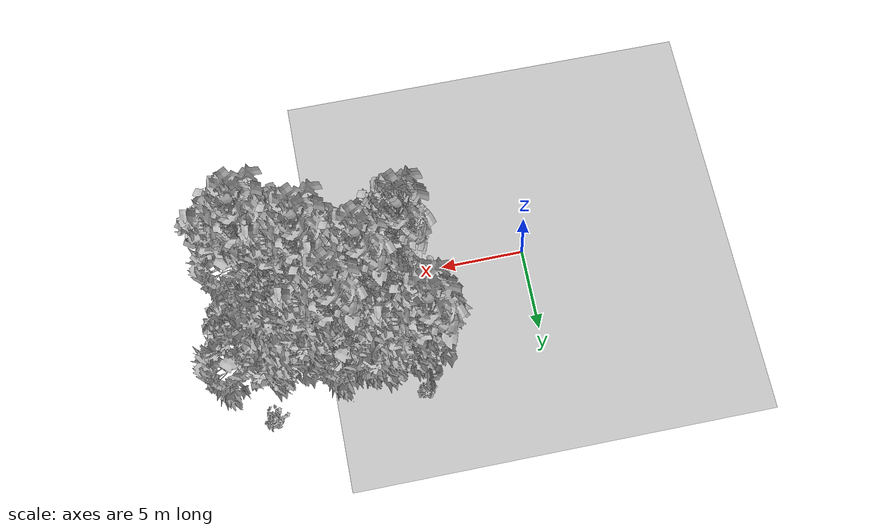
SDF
<sdf version="1.7">
 <world name="default">
  <model name="ground_plane">
   <static>1</static>
   <link name="link">
    <collision name="collision">
     <pose>-50 0 0 0 -0 0</pose>
     <geometry><plane><normal>0 0 1</normal><size>80 80</size></plane></geometry>
     <surface><contact><ode><min_depth>0.01</min_depth><max_vel>0</max_vel></ode></contact></surface>
    </collision>
    <visual name="grass">
     <cast_shadows>0</cast_shadows>
     <geometry>
      <mesh>
       <scale>0.46714285714285714 0.46714285714285714 0.1</scale>
       <uri>file://grass_plane/meshes/grass_plane.dae</uri>
      </mesh>
     </geometry>
    </visual>
   </link>
  </model>
  <model name="Tree 34">
   <static>1</static>
   <pose>15.75394999544745 0.29198959973918903 0 1.57079 -0 0</pose>
   <link name="link">
    <collision name="collision">
     <geometry><mesh><scale>3.5 5 3.5</scale><uri>model://tree_9/meshes/tree_9.obj</uri></mesh></geometry>
    </collision>
    <visual name="visual">
     <geometry><mesh><scale>3.5 5 3.5</scale><uri>model://tree_9/meshes/tree_9.obj</uri></mesh></geometry>
    </visual>
   </link>
  </model>
  <model name="Tree 51">
   <static>1</static>
   <pose>13.115661060410844 3.373158618874058 0 1.57079 -0 0</pose>
   <link name="link">
    <collision name="collision">
     <geometry><mesh><scale>3.5 5 3.5</scale><uri>model://tree_2/meshes/tree_2.obj</uri></mesh></geometry>
    </collision>
    <visual name="visual">
     <geometry><mesh><scale>3.5 5 3.5</scale><uri>model://tree_2/meshes/tree_2.obj</uri></mesh></geometry>
    </visual>
   </link>
  </model>
  <model name="Tree 62">
   <static>1</static>
   <pose>11.694431519298185 5.433279947996887 0 1.57079 -0 0</pose>
   <link name="link">
    <collision name="collision">
     <geometry><mesh><scale>3.5 5 3.5</scale><uri>model://tree_9/meshes/tree_9.obj</uri></mesh></geometry>
    </collision>
    <visual name="visual">
     <geometry><mesh><scale>3.5 5 3.5</scale><uri>model://tree_9/meshes/tree_9.obj</uri></mesh></geometry>
    </visual>
   </link>
  </model>
  <model name="Tree 79">
   <static>1</static>
   <pose>10.336337650634704 2.343339848161051 0 1.57079 -0 0</pose>
   <link name="link">
    <collision name="collision">
     <geometry><mesh><scale>3.5 5 3.5</scale><uri>model://tree_2/meshes/tree_2.obj</uri></mesh></geometry>
    </collision>
    <visual name="visual">
     <geometry><mesh><scale>3.5 5 3.5</scale><uri>model://tree_2/meshes/tree_2.obj</uri></mesh></geometry>
    </visual>
   </link>
  </model>
  <model name="Tree 99">
   <static>1</static>
   <pose>13.416703653999079 4.802766635892162 0 1.57079 -0 0</pose>
   <link name="link">
    <collision name="collision">
     <geometry><mesh><scale>3.5 5 3.5</scale><uri>model://tree_2/meshes/tree_2.obj</uri></mesh></geometry>
    </collision>
    <visual name="visual">
     <geometry><mesh><scale>3.5 5 3.5</scale><uri>model://tree_2/meshes/tree_2.obj</uri></mesh></geometry>
    </visual>
   </link>
  </model>
  <model name="Tree 126">
   <static>1</static>
   <pose>8.190412451663576 6.014021272746753 0 1.57079 -0 0</pose>
   <link name="link">
    <collision name="collision">
     <geometry><mesh><scale>3.5 5 3.5</scale><uri>model://tree_2/meshes/tree_2.obj</uri></mesh></geometry>
    </collision>
    <visual name="visual">
     <geometry><mesh><scale>3.5 5 3.5</scale><uri>model://tree_2/meshes/tree_2.obj</uri></mesh></geometry>
    </visual>
   </link>
  </model>
  <model name="Tree 223">
   <static>1</static>
   <pose>15.300945860618725 -0.02943285491555514 0 1.57079 -0 0</pose>
   <link name="link">
    <collision name="collision">
     <geometry><mesh><scale>3.5 5 3.5</scale><uri>model://tree_2/meshes/tree_2.obj</uri></mesh></geometry>
    </collision>
    <visual name="visual">
     <geometry><mesh><scale>3.5 5 3.5</scale><uri>model://tree_2/meshes/tree_2.obj</uri></mesh></geometry>
    </visual>
   </link>
  </model>
  <model name="Tree 276">
   <static>1</static>
   <pose>7.031673003716492 7.374940477290579 0 1.57079 -0 0</pose>
   <link name="link">
    <collision name="collision">
     <geometry><mesh><scale>3.5 5 3.5</scale><uri>model://tree_9/meshes/tree_9.obj</uri></mesh></geometry>
    </collision>
    <visual name="visual">
     <geometry><mesh><scale>3.5 5 3.5</scale><uri>model://tree_9/meshes/tree_9.obj</uri></mesh></geometry>
    </visual>
   </link>
  </model>
  <model name="Tree 306">
   <static>1</static>
   <pose>13.08520487826975 1.1579900831947114 0 1.57079 -0 0</pose>
   <link name="link">
    <collision name="collision">
     <geometry><mesh><scale>3.5 5 3.5</scale><uri>model://tree_2/meshes/tree_2.obj</uri></mesh></geometry>
    </collision>
    <visual name="visual">
     <geometry><mesh><scale>3.5 5 3.5</scale><uri>model://tree_2/meshes/tree_2.obj</uri></mesh></geometry>
    </visual>
   </link>
  </model>
  <model name="Tree 323">
   <static>1</static>
   <pose>9.82986223678008 6.335077286413096 0 1.57079 -0 0</pose>
   <link name="link">
    <collision name="collision">
     <geometry><mesh><scale>3.5 5 3.5</scale><uri>model://tree_2/meshes/tree_2.obj</uri></mesh></geometry>
    </collision>
    <visual name="visual">
     <geometry><mesh><scale>3.5 5 3.5</scale><uri>model://tree_2/meshes/tree_2.obj</uri></mesh></geometry>
    </visual>
   </link>
  </model>
  <model name="Tree 372">
   <static>1</static>
   <pose>9.904639075924813 3.309628266221921 0 1.57079 -0 0</pose>
   <link name="link">
    <collision name="collision">
     <geometry><mesh><scale>3.5 5 3.5</scale><uri>model://tree_9/meshes/tree_9.obj</uri></mesh></geometry>
    </collision>
    <visual name="visual">
     <geometry><mesh><scale>3.5 5 3.5</scale><uri>model://tree_9/meshes/tree_9.obj</uri></mesh></geometry>
    </visual>
   </link>
  </model>
  <model name="Tree 415">
   <static>1</static>
   <pose>12.819333493328102 1.7587279541549208 0 1.57079 -0 0</pose>
   <link name="link">
    <collision name="collision">
     <geometry><mesh><scale>3.5 5 3.5</scale><uri>model://tree_9/meshes/tree_9.obj</uri></mesh></geometry>
    </collision>
    <visual name="visual">
     <geometry><mesh><scale>3.5 5 3.5</scale><uri>model://tree_9/meshes/tree_9.obj</uri></mesh></geometry>
    </visual>
   </link>
  </model>
  <model name="Tree 541">
   <static>1</static>
   <pose>12.180242072260299 2.3773031305296968 0 1.57079 -0 0</pose>
   <link name="link">
    <collision name="collision">
     <geometry><mesh><scale>3.5 5 3.5</scale><uri>model://tree_2/meshes/tree_2.obj</uri></mesh></geometry>
    </collision>
    <visual name="visual">
     <geometry><mesh><scale>3.5 5 3.5</scale><uri>model://tree_2/meshes/tree_2.obj</uri></mesh></geometry>
    </visual>
   </link>
  </model>
  <model name="Tree 543">
   <static>1</static>
   <pose>7.642827110396183 2.2116961837476268 0 1.57079 -0 0</pose>
   <link name="link">
    <collision name="collision">
     <geometry><mesh><scale>3.5 5 3.5</scale><uri>model://tree_9/meshes/tree_9.obj</uri></mesh></geometry>
    </collision>
    <visual name="visual">
     <geometry><mesh><scale>3.5 5 3.5</scale><uri>model://tree_9/meshes/tree_9.obj</uri></mesh></geometry>
    </visual>
   </link>
  </model>
  <model name="Tree 556">
   <static>1</static>
   <pose>15.73344226496581 5.647564741896396 0 1.57079 -0 0</pose>
   <link name="link">
    <collision name="collision">
     <geometry><mesh><scale>3.5 5 3.5</scale><uri>model://tree_2/meshes/tree_2.obj</uri></mesh></geometry>
    </collision>
    <visual name="visual">
     <geometry><mesh><scale>3.5 5 3.5</scale><uri>model://tree_2/meshes/tree_2.obj</uri></mesh></geometry>
    </visual>
   </link>
  </model>
  <model name="Tree 595">
   <static>1</static>
   <pose>8.398914998039658 5.517555568965292 0 1.57079 -0 0</pose>
   <link name="link">
    <collision name="collision">
     <geometry><mesh><scale>3.5 5 3.5</scale><uri>model://tree_2/meshes/tree_2.obj</uri></mesh></geometry>
    </collision>
    <visual name="visual">
     <geometry><mesh><scale>3.5 5 3.5</scale><uri>model://tree_2/meshes/tree_2.obj</uri></mesh></geometry>
    </visual>
   </link>
  </model>
  <model name="Tree 624">
   <static>1</static>
   <pose>7.7269006050239 2.0306865690781564 0 1.57079 -0 0</pose>
   <link name="link">
    <collision name="collision">
     <geometry><mesh><scale>3.5 5 3.5</scale><uri>model://tree_9/meshes/tree_9.obj</uri></mesh></geometry>
    </collision>
    <visual name="visual">
     <geometry><mesh><scale>3.5 5 3.5</scale><uri>model://tree_9/meshes/tree_9.obj</uri></mesh></geometry>
    </visual>
   </link>
  </model>
  <model name="Bush 84">
   <static>1</static>
   <pose>10.446279090381857 1.3286601807235456 0 1.57079 -0 0</pose>
   <link name="link">
    <collision name="collision">
     <geometry><mesh><scale>2 2 2</scale><uri>model://bush_2/meshes/bush_2.obj</uri></mesh></geometry>
     <surface><contact><collide_without_contact>false</collide_without_contact></contact></surface>
    </collision>
    <visual name="visual">
     <geometry><mesh><scale>2 2 2</scale><uri>model://bush_2/meshes/bush_2.obj</uri></mesh></geometry>
    </visual>
   </link>
  </model>
  <model name="Bush 148">
   <static>1</static>
   <pose>16.30936869877185 7.541737399946442 0 1.57079 -0 0</pose>
   <link name="link">
    <collision name="collision">
     <geometry><mesh><scale>2 2 2</scale><uri>model://bush_2/meshes/bush_2.obj</uri></mesh></geometry>
     <surface><contact><collide_without_contact>false</collide_without_contact></contact></surface>
    </collision>
    <visual name="visual">
     <geometry><mesh><scale>2 2 2</scale><uri>model://bush_2/meshes/bush_2.obj</uri></mesh></geometry>
    </visual>
   </link>
  </model>
  <model name="Bush 199">
   <static>1</static>
   <pose>12.92383588346732 2.3684104642360566 0 1.57079 -0 0</pose>
   <link name="link">
    <collision name="collision">
     <geometry><mesh><scale>2 2 2</scale><uri>model://bush_2/meshes/bush_2.obj</uri></mesh></geometry>
     <surface><contact><collide_without_contact>false</collide_without_contact></contact></surface>
    </collision>
    <visual name="visual">
     <geometry><mesh><scale>2 2 2</scale><uri>model://bush_2/meshes/bush_2.obj</uri></mesh></geometry>
    </visual>
   </link>
  </model>
  <model name="Bush 518">
   <static>1</static>
   <pose>5.462350723894659 0.3163940545321111 0 1.57079 -0 0</pose>
   <link name="link">
    <collision name="collision">
     <geometry><mesh><scale>2 2 2</scale><uri>model://bush_0/meshes/bush_0.obj</uri></mesh></geometry>
     <surface><contact><collide_without_contact>false</collide_without_contact></contact></surface>
    </collision>
    <visual name="visual">
     <geometry><mesh><scale>2 2 2</scale><uri>model://bush_0/meshes/bush_0.obj</uri></mesh></geometry>
    </visual>
   </link>
  </model>
  <model name="Bush 522">
   <static>1</static>
   <pose>16.153963536704488 7.367019809971673 0 1.57079 -0 0</pose>
   <link name="link">
    <collision name="collision">
     <geometry><mesh><scale>2 2 2</scale><uri>model://bush_4/meshes/bush_4.obj</uri></mesh></geometry>
     <surface><contact><collide_without_contact>false</collide_without_contact></contact></surface>
    </collision>
    <visual name="visual">
     <geometry><mesh><scale>2 2 2</scale><uri>model://bush_4/meshes/bush_4.obj</uri></mesh></geometry>
    </visual>
   </link>
  </model>
  <model name="Bush 591">
   <static>1</static>
   <pose>13.328196401215394 4.368124349966436 0 1.57079 -0 0</pose>
   <link name="link">
    <collision name="collision">
     <geometry><mesh><scale>2 2 2</scale><uri>model://bush_2/meshes/bush_2.obj</uri></mesh></geometry>
     <surface><contact><collide_without_contact>false</collide_without_contact></contact></surface>
    </collision>
    <visual name="visual">
     <geometry><mesh><scale>2 2 2</scale><uri>model://bush_2/meshes/bush_2.obj</uri></mesh></geometry>
    </visual>
   </link>
  </model>
  <model name="Bush 614">
   <static>1</static>
   <pose>7.329252516129792 7.514727598859821 0 1.57079 -0 0</pose>
   <link name="link">
    <collision name="collision">
     <geometry><mesh><scale>2 2 2</scale><uri>model://bush_2/meshes/bush_2.obj</uri></mesh></geometry>
     <surface><contact><collide_without_contact>false</collide_without_contact></contact></surface>
    </collision>
    <visual name="visual">
     <geometry><mesh><scale>2 2 2</scale><uri>model://bush_2/meshes/bush_2.obj</uri></mesh></geometry>
    </visual>
   </link>
  </model>
 </world>
</sdf>
